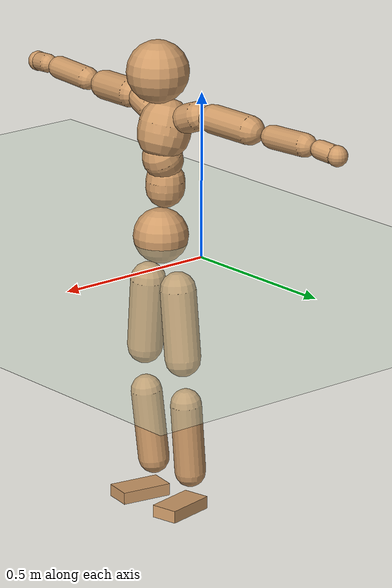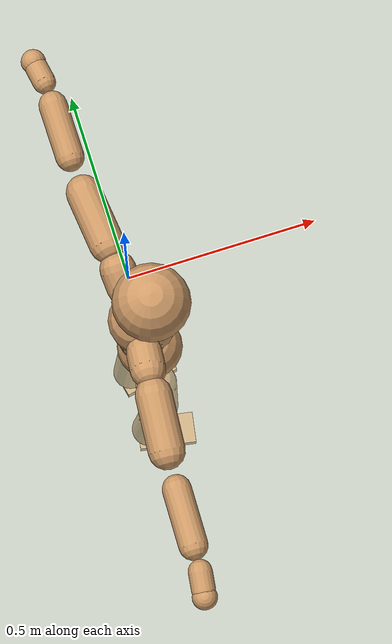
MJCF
<mujoco model="humanoid">
  <compiler coordinate="local"/>
  <default>
    <joint damping="0.0" armature="0.01" stiffness="0.0" limited="true"/>
    <geom conaffinity="1" condim="3" contype="7" margin="0.001" rgba="0.8 0.6 .4 1"/>
  </default>
  <asset>
    <texture type="skybox" builtin="gradient" rgb1=".4 .5 .6" rgb2="0 0 0" width="100" height="100"/>
    <texture builtin="flat" height="1278" mark="cross" markrgb="1 1 1" name="texgeom" random="0.01" rgb1="0.8 0.6 0.4" rgb2="0.8 0.6 0.4" type="cube" width="127"/>
    <texture builtin="checker" height="100" name="texplane" rgb1="0 0 0" rgb2="0.8 0.8 0.8" type="2d" width="100"/>
    <material name="MatPlane" reflectance="0.5" shininess="1" specular="1" texrepeat="60 60" texture="texplane"/>
    <material name="geom" texture="texgeom" texuniform="true"/>
  </asset>
  <worldbody>
    <light cutoff="100" diffuse="1 1 1" dir="-0 0 -1.3" directional="true" exponent="1" pos="0 0 1.3" specular=".1 .1 .1"/>
    <geom conaffinity="1" condim="3" name="floor" pos="0 0 0" rgba="0.8 0.9 0.8 1" size="100 100 .2" type="plane" material="MatPlane"/>
    <body name="Pelvis" pos="-0.0024 -0.1894 0.0218">
      <freejoint name="Pelvis"/>
      <geom type="sphere" contype="1" conaffinity="1" density="500" size="0.0834" pos="0.0000 0.0000 0.0000" name="Pelvis"/>
      <body name="L_Hip" pos="-0.0082 0.062 -0.0841">
        <joint name="L_Hip_x" type="hinge" pos="0 0 0" axis="1 0 0" stiffness="800" damping="80" armature="0.02" range="-180.0000 180.0000"/>
        <joint name="L_Hip_y" type="hinge" pos="0 0 0" axis="0 1 0" stiffness="800" damping="80" armature="0.02" range="-180.0000 180.0000"/>
        <joint name="L_Hip_z" type="hinge" pos="0 0 0" axis="0 0 1" stiffness="800" damping="80" armature="0.02" range="-180.0000 180.0000"/>
        <geom type="capsule" contype="1" conaffinity="1" density="500" fromto="-0.0010 0.0063 -0.0709 -0.0038 0.0253 -0.2835" size="0.0545" name="L_Hip"/>
        <body name="L_Knee" pos="-0.0048 0.0316 -0.3544">
          <joint name="L_Knee_x" type="hinge" pos="0 0 0" axis="1 0 0" stiffness="800" damping="80" armature="0.02" range="-180.0000 180.0000"/>
          <joint name="L_Knee_y" type="hinge" pos="0 0 0" axis="0 1 0" stiffness="800" damping="80" armature="0.02" range="-180.0000 180.0000"/>
          <joint name="L_Knee_z" type="hinge" pos="0 0 0" axis="0 0 1" stiffness="800" damping="80" armature="0.02" range="-180.0000 180.0000"/>
          <geom type="capsule" contype="1" conaffinity="1" density="500" fromto="-0.0076 -0.0021 -0.0742 -0.0302 -0.0086 -0.2970" size="0.0473" name="L_Knee"/>
          <body name="L_Ankle" pos="-0.0378 -0.0107 -0.3712">
            <joint name="L_Ankle_x" type="hinge" pos="0 0 0" axis="1 0 0" stiffness="800" damping="80" armature="0.02" range="-180.0000 180.0000"/>
            <joint name="L_Ankle_y" type="hinge" pos="0 0 0" axis="0 1 0" stiffness="800" damping="80" armature="0.02" range="-180.0000 180.0000"/>
            <joint name="L_Ankle_z" type="hinge" pos="0 0 0" axis="0 0 1" stiffness="800" damping="80" armature="0.02" range="-180.0000 180.0000"/>
            <geom type="box" contype="1" conaffinity="1" density="500" pos="0.0546 0.0110 -0.0263" size="0.0786 0.0421 0.019" quat="0.9950 0.0000 0.0000 0.0997" name="L_Ankle"/>
            <body name="L_Toe" pos="0.1091 0.0221 -0.0526">
              <joint name="L_Toe_x" type="hinge" pos="0 0 0" axis="1 0 0" stiffness="500" damping="50" armature="0.02" range="-180.0000 180.0000"/>
              <joint name="L_Toe_y" type="hinge" pos="0 0 0" axis="0 1 0" stiffness="500" damping="50" armature="0.02" range="-180.0000 180.0000"/>
              <joint name="L_Toe_z" type="hinge" pos="0 0 0" axis="0 0 1" stiffness="500" damping="50" armature="0.02" range="-180.0000 180.0000"/>
              <geom type="box" contype="1" conaffinity="1" density="500" pos="0.0000 0.0000 0.0262" size="0.0008 0.0021 0.0009" quat="0.9943 0.0000 0.0000 0.1065" name="L_Toe"/>
            </body>
          </body>
        </body>
      </body>
      <body name="R_Hip" pos="-0.0051 -0.0605 -0.0837">
        <joint name="R_Hip_x" type="hinge" pos="0 0 0" axis="1 0 0" stiffness="800" damping="80" armature="0.02" range="-180.0000 180.0000"/>
        <joint name="R_Hip_y" type="hinge" pos="0 0 0" axis="0 1 0" stiffness="800" damping="80" armature="0.02" range="-180.0000 180.0000"/>
        <joint name="R_Hip_z" type="hinge" pos="0 0 0" axis="0 0 1" stiffness="800" damping="80" armature="0.02" range="-180.0000 180.0000"/>
        <geom type="capsule" contype="1" conaffinity="1" density="500" fromto="-0.0014 -0.0071 -0.0719 -0.0055 -0.0284 -0.2878" size="0.0539" name="R_Hip"/>
        <body name="R_Knee" pos="-0.0069 -0.0355 -0.3597">
          <joint name="R_Knee_x" type="hinge" pos="0 0 0" axis="1 0 0" stiffness="800" damping="80" armature="0.02" range="-180.0000 180.0000"/>
          <joint name="R_Knee_y" type="hinge" pos="0 0 0" axis="0 1 0" stiffness="800" damping="80" armature="0.02" range="-180.0000 180.0000"/>
          <joint name="R_Knee_z" type="hinge" pos="0 0 0" axis="0 0 1" stiffness="800" damping="80" armature="0.02" range="-180.0000 180.0000"/>
          <geom type="capsule" contype="1" conaffinity="1" density="500" fromto="-0.0073 0.0026 -0.0742 -0.0292 0.0106 -0.2968" size="0.0476" name="R_Knee"/>
          <body name="R_Ankle" pos="-0.0364 0.0132 -0.3711">
            <joint name="R_Ankle_x" type="hinge" pos="0 0 0" axis="1 0 0" stiffness="800" damping="80" armature="0.02" range="-180.0000 180.0000"/>
            <joint name="R_Ankle_y" type="hinge" pos="0 0 0" axis="0 1 0" stiffness="800" damping="80" armature="0.02" range="-180.0000 180.0000"/>
            <joint name="R_Ankle_z" type="hinge" pos="0 0 0" axis="0 0 1" stiffness="800" damping="80" armature="0.02" range="-180.0000 180.0000"/>
            <geom type="box" contype="1" conaffinity="1" density="500" pos="0.0559 -0.0096 -0.0217" size="0.0797 0.0432 0.0184" quat="0.9964 0.0000 0.0000 -0.0852" name="R_Ankle"/>
            <body name="R_Toe" pos="0.1118 -0.0193 -0.0434">
              <joint name="R_Toe_x" type="hinge" pos="0 0 0" axis="1 0 0" stiffness="500" damping="50" armature="0.02" range="-180.0000 180.0000"/>
              <joint name="R_Toe_y" type="hinge" pos="0 0 0" axis="0 1 0" stiffness="500" damping="50" armature="0.02" range="-180.0000 180.0000"/>
              <joint name="R_Toe_z" type="hinge" pos="0 0 0" axis="0 0 1" stiffness="500" damping="50" armature="0.02" range="-180.0000 180.0000"/>
              <geom type="box" contype="1" conaffinity="1" density="500" pos="0.0000 0.0000 0.0234" size="0.0008 0.0021 0.001" quat="0.9972 0.0000 0.0000 -0.0752" name="R_Toe"/>
            </body>
          </body>
        </body>
      </body>
      <body name="Torso" pos="-0.018 -0.0022 0.0963">
        <joint name="Torso_x" type="hinge" pos="0 0 0" axis="1 0 0" stiffness="1000" damping="100" armature="0.02" range="-180.0000 180.0000"/>
        <joint name="Torso_y" type="hinge" pos="0 0 0" axis="0 1 0" stiffness="1000" damping="100" armature="0.02" range="-180.0000 180.0000"/>
        <joint name="Torso_z" type="hinge" pos="0 0 0" axis="0 0 1" stiffness="1000" damping="100" armature="0.02" range="-180.0000 180.0000"/>
        <geom type="capsule" contype="1" conaffinity="1" density="500" fromto="0.0002 0.0021 0.0707 0.0001 0.0014 0.0471" size="0.058962" name="Torso"/>
        <body name="Spine" pos="0.0003 0.0034 0.1178">
          <joint name="Spine_x" type="hinge" pos="0 0 0" axis="1 0 0" stiffness="1000" damping="100" armature="0.02" range="-180.0000 180.0000"/>
          <joint name="Spine_y" type="hinge" pos="0 0 0" axis="0 1 0" stiffness="1000" damping="100" armature="0.02" range="-180.0000 180.0000"/>
          <joint name="Spine_z" type="hinge" pos="0 0 0" axis="0 0 1" stiffness="1000" damping="100" armature="0.02" range="-180.0000 180.0000"/>
          <geom type="capsule" contype="1" conaffinity="1" density="500" fromto="0.0146 0.0016 0.0272 0.0097 0.0011 0.0181" size="0.060357" name="Spine"/>
          <body name="Chest" pos="0.0243 0.0027 0.0453">
            <joint name="Chest_x" type="hinge" pos="0 0 0" axis="1 0 0" stiffness="1000" damping="100" armature="0.02" range="-180.0000 180.0000"/>
            <joint name="Chest_y" type="hinge" pos="0 0 0" axis="0 1 0" stiffness="1000" damping="100" armature="0.02" range="-180.0000 180.0000"/>
            <joint name="Chest_z" type="hinge" pos="0 0 0" axis="0 0 1" stiffness="1000" damping="100" armature="0.02" range="-180.0000 180.0000"/>
            <geom type="capsule" contype="1" conaffinity="1" density="500" fromto="-0.0230 -0.0012 0.0797 -0.0153 -0.0008 0.0532" size="0.079794" name="Chest"/>
            <body name="Neck" pos="-0.0418 -0.0035 0.1865">
              <joint name="Neck_x" type="hinge" pos="0 0 0" axis="1 0 0" stiffness="500" damping="50" armature="0.02" range="-180.0000 180.0000"/>
              <joint name="Neck_y" type="hinge" pos="0 0 0" axis="0 1 0" stiffness="500" damping="50" armature="0.02" range="-180.0000 180.0000"/>
              <joint name="Neck_z" type="hinge" pos="0 0 0" axis="0 0 1" stiffness="500" damping="50" armature="0.02" range="-180.0000 180.0000"/>
              <geom type="capsule" contype="1" conaffinity="1" density="500" fromto="0.0097 0.0006 0.0118 0.0388 0.0024 0.0470" size="0.035526" name="Neck"/>
              <body name="Head" pos="0.0484 0.003 0.0588">
                <joint name="Head_x" type="hinge" pos="0 0 0" axis="1 0 0" stiffness="500" damping="50" armature="0.02" range="-180.0000 180.0000"/>
                <joint name="Head_y" type="hinge" pos="0 0 0" axis="0 1 0" stiffness="500" damping="50" armature="0.02" range="-180.0000 180.0000"/>
                <joint name="Head_z" type="hinge" pos="0 0 0" axis="0 0 1" stiffness="500" damping="50" armature="0.02" range="-180.0000 180.0000"/>
                <geom type="sphere" contype="1" conaffinity="1" density="500" size="0.0938" pos="0.0000 0.0000 0.0000" name="Head"/>
              </body>
            </body>
            <body name="L_Thorax" pos="-0.0352 0.0661 0.1066">
              <joint name="L_Thorax_x" type="hinge" pos="0 0 0" axis="1 0 0" stiffness="500" damping="50" armature="0.02" range="-180.0000 180.0000"/>
              <joint name="L_Thorax_y" type="hinge" pos="0 0 0" axis="0 1 0" stiffness="500" damping="50" armature="0.02" range="-180.0000 180.0000"/>
              <joint name="L_Thorax_z" type="hinge" pos="0 0 0" axis="0 0 1" stiffness="500" damping="50" armature="0.02" range="-180.0000 180.0000"/>
              <geom type="capsule" contype="1" conaffinity="1" density="500" fromto="-0.0012 0.0149 0.0056 -0.0048 0.0598 0.0222" size="0.0439" name="L_Thorax"/>
              <body name="L_Shoulder" pos="-0.006 0.0747 0.0278">
                <joint name="L_Shoulder_x" type="hinge" pos="0 0 0" axis="1 0 0" stiffness="500" damping="50" armature="0.02" range="-720.0000 720.0000"/>
                <joint name="L_Shoulder_y" type="hinge" pos="0 0 0" axis="0 1 0" stiffness="500" damping="50" armature="0.02" range="-720.0000 720.0000"/>
                <joint name="L_Shoulder_z" type="hinge" pos="0 0 0" axis="0 0 1" stiffness="500" damping="50" armature="0.02" range="-720.0000 720.0000"/>
                <geom type="capsule" contype="1" conaffinity="1" density="500" fromto="-0.0052 0.0477 -0.0020 -0.0208 0.1909 -0.0078" size="0.0434" name="L_Shoulder"/>
                <body name="L_Elbow" pos="-0.0261 0.2386 -0.0098">
                  <joint name="L_Elbow_x" type="hinge" pos="0 0 0" axis="1 0 0" stiffness="500" damping="50" armature="0.02" range="-720.0000 720.0000"/>
                  <joint name="L_Elbow_y" type="hinge" pos="0 0 0" axis="0 1 0" stiffness="500" damping="50" armature="0.02" range="-720.0000 720.0000"/>
                  <joint name="L_Elbow_z" type="hinge" pos="0 0 0" axis="0 0 1" stiffness="500" damping="50" armature="0.02" range="-720.0000 720.0000"/>
                  <geom type="capsule" contype="1" conaffinity="1" density="500" fromto="-0.0004 0.0455 0.0017 -0.0018 0.1822 0.0070" size="0.0348" name="L_Elbow"/>
                  <body name="L_Wrist" pos="-0.0022 0.2277 0.0087">
                    <joint name="L_Wrist_x" type="hinge" pos="0 0 0" axis="1 0 0" stiffness="300" damping="30" armature="0.02" range="-180.0000 180.0000"/>
                    <joint name="L_Wrist_y" type="hinge" pos="0 0 0" axis="0 1 0" stiffness="300" damping="30" armature="0.02" range="-180.0000 180.0000"/>
                    <joint name="L_Wrist_z" type="hinge" pos="0 0 0" axis="0 0 1" stiffness="300" damping="30" armature="0.02" range="-180.0000 180.0000"/>
                    <geom type="capsule" contype="1" conaffinity="1" density="500" fromto="-0.0026 0.0151 -0.0018 -0.0103 0.0605 -0.0073" size="0.0282" name="L_Wrist"/>
                    <body name="L_Hand" pos="-0.0129 0.0756 -0.0092">
                      <joint name="L_Hand_x" type="hinge" pos="0 0 0" axis="1 0 0" stiffness="300" damping="30" armature="0.02" range="-180.0000 180.0000"/>
                      <joint name="L_Hand_y" type="hinge" pos="0 0 0" axis="0 1 0" stiffness="300" damping="30" armature="0.02" range="-180.0000 180.0000"/>
                      <joint name="L_Hand_z" type="hinge" pos="0 0 0" axis="0 0 1" stiffness="300" damping="30" armature="0.02" range="-180.0000 180.0000"/>
                      <geom type="sphere" contype="1" conaffinity="1" density="500" size="0.0305" pos="0.0000 0.0000 0.0000" name="L_Hand"/>
                    </body>
                  </body>
                </body>
              </body>
            </body>
            <body name="R_Thorax" pos="-0.0381 -0.0684 0.1056">
              <joint name="R_Thorax_x" type="hinge" pos="0 0 0" axis="1 0 0" stiffness="500" damping="50" armature="0.02" range="-180.0000 180.0000"/>
              <joint name="R_Thorax_y" type="hinge" pos="0 0 0" axis="0 1 0" stiffness="500" damping="50" armature="0.02" range="-180.0000 180.0000"/>
              <joint name="R_Thorax_z" type="hinge" pos="0 0 0" axis="0 0 1" stiffness="500" damping="50" armature="0.02" range="-180.0000 180.0000"/>
              <geom type="capsule" contype="1" conaffinity="1" density="500" fromto="-0.0016 -0.0155 0.0055 -0.0062 -0.0622 0.0220" size="0.0432" name="R_Thorax"/>
              <body name="R_Shoulder" pos="-0.0078 -0.0777 0.0275">
                <joint name="R_Shoulder_x" type="hinge" pos="0 0 0" axis="1 0 0" stiffness="500" damping="50" armature="0.02" range="-720.0000 720.0000"/>
                <joint name="R_Shoulder_y" type="hinge" pos="0 0 0" axis="0 1 0" stiffness="500" damping="50" armature="0.02" range="-720.0000 720.0000"/>
                <joint name="R_Shoulder_z" type="hinge" pos="0 0 0" axis="0 0 1" stiffness="500" damping="50" armature="0.02" range="-720.0000 720.0000"/>
                <geom type="capsule" contype="1" conaffinity="1" density="500" fromto="-0.0036 -0.0457 -0.0018 -0.0142 -0.1829 -0.0071" size="0.0446" name="R_Shoulder"/>
                <body name="R_Elbow" pos="-0.0178 -0.2286 -0.0089">
                  <joint name="R_Elbow_x" type="hinge" pos="0 0 0" axis="1 0 0" stiffness="500" damping="50" armature="0.02" range="-720.0000 720.0000"/>
                  <joint name="R_Elbow_y" type="hinge" pos="0 0 0" axis="0 1 0" stiffness="500" damping="50" armature="0.02" range="-720.0000 720.0000"/>
                  <joint name="R_Elbow_z" type="hinge" pos="0 0 0" axis="0 0 1" stiffness="500" damping="50" armature="0.02" range="-720.0000 720.0000"/>
                  <geom type="capsule" contype="1" conaffinity="1" density="500" fromto="-0.0011 -0.0467 0.0016 -0.0043 -0.1868 0.0066" size="0.035" name="R_Elbow"/>
                  <body name="R_Wrist" pos="-0.0054 -0.2335 0.0082">
                    <joint name="R_Wrist_x" type="hinge" pos="0 0 0" axis="1 0 0" stiffness="300" damping="30" armature="0.02" range="-180.0000 180.0000"/>
                    <joint name="R_Wrist_y" type="hinge" pos="0 0 0" axis="0 1 0" stiffness="300" damping="30" armature="0.02" range="-180.0000 180.0000"/>
                    <joint name="R_Wrist_z" type="hinge" pos="0 0 0" axis="0 0 1" stiffness="300" damping="30" armature="0.02" range="-180.0000 180.0000"/>
                    <geom type="capsule" contype="1" conaffinity="1" density="500" fromto="-0.0019 -0.0151 -0.0014 -0.0078 -0.0603 -0.0054" size="0.0289" name="R_Wrist"/>
                    <body name="R_Hand" pos="-0.0097 -0.0754 -0.0068">
                      <joint name="R_Hand_x" type="hinge" pos="0 0 0" axis="1 0 0" stiffness="300" damping="30" armature="0.02" range="-180.0000 180.0000"/>
                      <joint name="R_Hand_y" type="hinge" pos="0 0 0" axis="0 1 0" stiffness="300" damping="30" armature="0.02" range="-180.0000 180.0000"/>
                      <joint name="R_Hand_z" type="hinge" pos="0 0 0" axis="0 0 1" stiffness="300" damping="30" armature="0.02" range="-180.0000 180.0000"/>
                      <geom type="sphere" contype="1" conaffinity="1" density="500" size="0.0304" pos="0.0000 0.0000 0.0000" name="R_Hand"/>
                    </body>
                  </body>
                </body>
              </body>
            </body>
          </body>
        </body>
      </body>
    </body>
  </worldbody>
  <actuator>
    <motor name="L_Hip_x" joint="L_Hip_x" gear="500"/>
    <motor name="L_Hip_y" joint="L_Hip_y" gear="500"/>
    <motor name="L_Hip_z" joint="L_Hip_z" gear="500"/>
    <motor name="L_Knee_x" joint="L_Knee_x" gear="500"/>
    <motor name="L_Knee_y" joint="L_Knee_y" gear="500"/>
    <motor name="L_Knee_z" joint="L_Knee_z" gear="500"/>
    <motor name="L_Ankle_x" joint="L_Ankle_x" gear="500"/>
    <motor name="L_Ankle_y" joint="L_Ankle_y" gear="500"/>
    <motor name="L_Ankle_z" joint="L_Ankle_z" gear="500"/>
    <motor name="L_Toe_x" joint="L_Toe_x" gear="500"/>
    <motor name="L_Toe_y" joint="L_Toe_y" gear="500"/>
    <motor name="L_Toe_z" joint="L_Toe_z" gear="500"/>
    <motor name="R_Hip_x" joint="R_Hip_x" gear="500"/>
    <motor name="R_Hip_y" joint="R_Hip_y" gear="500"/>
    <motor name="R_Hip_z" joint="R_Hip_z" gear="500"/>
    <motor name="R_Knee_x" joint="R_Knee_x" gear="500"/>
    <motor name="R_Knee_y" joint="R_Knee_y" gear="500"/>
    <motor name="R_Knee_z" joint="R_Knee_z" gear="500"/>
    <motor name="R_Ankle_x" joint="R_Ankle_x" gear="500"/>
    <motor name="R_Ankle_y" joint="R_Ankle_y" gear="500"/>
    <motor name="R_Ankle_z" joint="R_Ankle_z" gear="500"/>
    <motor name="R_Toe_x" joint="R_Toe_x" gear="500"/>
    <motor name="R_Toe_y" joint="R_Toe_y" gear="500"/>
    <motor name="R_Toe_z" joint="R_Toe_z" gear="500"/>
    <motor name="Torso_x" joint="Torso_x" gear="500"/>
    <motor name="Torso_y" joint="Torso_y" gear="500"/>
    <motor name="Torso_z" joint="Torso_z" gear="500"/>
    <motor name="Spine_x" joint="Spine_x" gear="500"/>
    <motor name="Spine_y" joint="Spine_y" gear="500"/>
    <motor name="Spine_z" joint="Spine_z" gear="500"/>
    <motor name="Chest_x" joint="Chest_x" gear="500"/>
    <motor name="Chest_y" joint="Chest_y" gear="500"/>
    <motor name="Chest_z" joint="Chest_z" gear="500"/>
    <motor name="Neck_x" joint="Neck_x" gear="500"/>
    <motor name="Neck_y" joint="Neck_y" gear="500"/>
    <motor name="Neck_z" joint="Neck_z" gear="500"/>
    <motor name="Head_x" joint="Head_x" gear="500"/>
    <motor name="Head_y" joint="Head_y" gear="500"/>
    <motor name="Head_z" joint="Head_z" gear="500"/>
    <motor name="L_Thorax_x" joint="L_Thorax_x" gear="500"/>
    <motor name="L_Thorax_y" joint="L_Thorax_y" gear="500"/>
    <motor name="L_Thorax_z" joint="L_Thorax_z" gear="500"/>
    <motor name="L_Shoulder_x" joint="L_Shoulder_x" gear="500"/>
    <motor name="L_Shoulder_y" joint="L_Shoulder_y" gear="500"/>
    <motor name="L_Shoulder_z" joint="L_Shoulder_z" gear="500"/>
    <motor name="L_Elbow_x" joint="L_Elbow_x" gear="500"/>
    <motor name="L_Elbow_y" joint="L_Elbow_y" gear="500"/>
    <motor name="L_Elbow_z" joint="L_Elbow_z" gear="500"/>
    <motor name="L_Wrist_x" joint="L_Wrist_x" gear="500"/>
    <motor name="L_Wrist_y" joint="L_Wrist_y" gear="500"/>
    <motor name="L_Wrist_z" joint="L_Wrist_z" gear="500"/>
    <motor name="L_Hand_x" joint="L_Hand_x" gear="500"/>
    <motor name="L_Hand_y" joint="L_Hand_y" gear="500"/>
    <motor name="L_Hand_z" joint="L_Hand_z" gear="500"/>
    <motor name="R_Thorax_x" joint="R_Thorax_x" gear="500"/>
    <motor name="R_Thorax_y" joint="R_Thorax_y" gear="500"/>
    <motor name="R_Thorax_z" joint="R_Thorax_z" gear="500"/>
    <motor name="R_Shoulder_x" joint="R_Shoulder_x" gear="500"/>
    <motor name="R_Shoulder_y" joint="R_Shoulder_y" gear="500"/>
    <motor name="R_Shoulder_z" joint="R_Shoulder_z" gear="500"/>
    <motor name="R_Elbow_x" joint="R_Elbow_x" gear="500"/>
    <motor name="R_Elbow_y" joint="R_Elbow_y" gear="500"/>
    <motor name="R_Elbow_z" joint="R_Elbow_z" gear="500"/>
    <motor name="R_Wrist_x" joint="R_Wrist_x" gear="500"/>
    <motor name="R_Wrist_y" joint="R_Wrist_y" gear="500"/>
    <motor name="R_Wrist_z" joint="R_Wrist_z" gear="500"/>
    <motor name="R_Hand_x" joint="R_Hand_x" gear="500"/>
    <motor name="R_Hand_y" joint="R_Hand_y" gear="500"/>
    <motor name="R_Hand_z" joint="R_Hand_z" gear="500"/>
  </actuator>
  <contact>
    <exclude body1="Torso" body2="Chest"/>
    <exclude body1="Head" body2="Chest"/>
    <exclude body1="R_Knee" body2="R_Toe"/>
    <exclude body1="R_Knee" body2="L_Ankle"/>
    <exclude body1="R_Knee" body2="L_Toe"/>
    <exclude body1="L_Knee" body2="L_Toe"/>
    <exclude body1="L_Knee" body2="R_Ankle"/>
    <exclude body1="L_Knee" body2="R_Toe"/>
    <exclude body1="L_Shoulder" body2="Chest"/>
    <exclude body1="R_Shoulder" body2="Chest"/>
  </contact>
  <sensor/>
  <size njmax="700" nconmax="700"/>
</mujoco>
